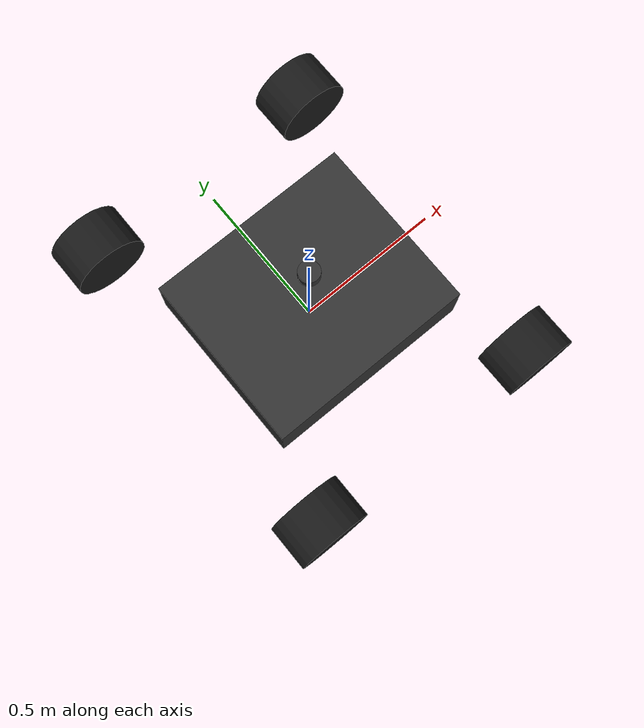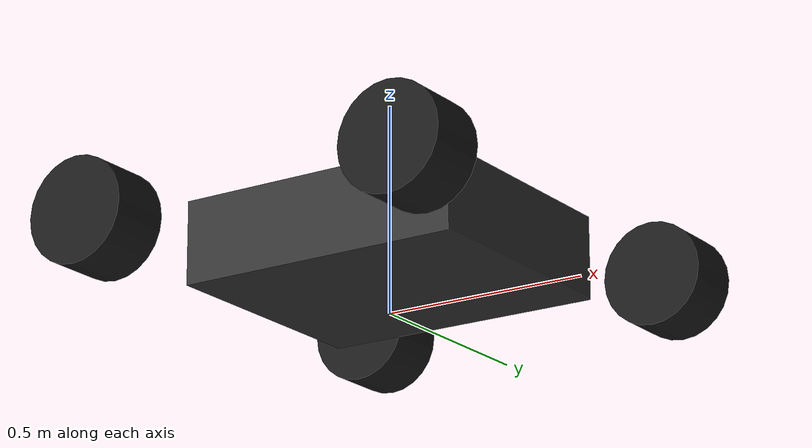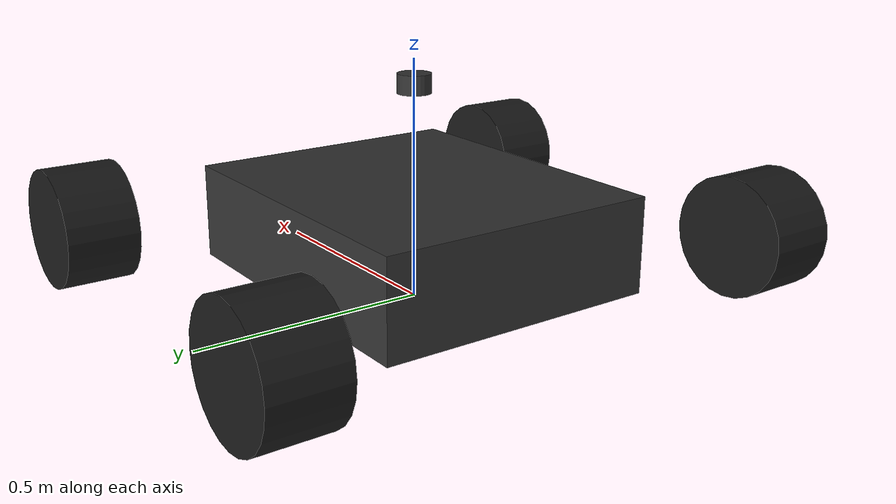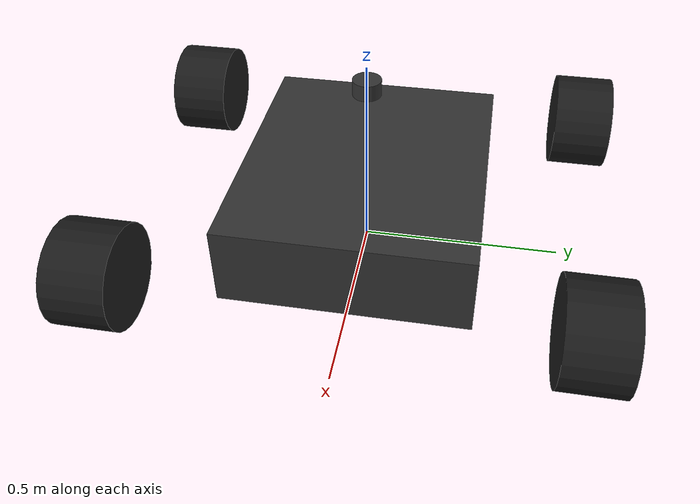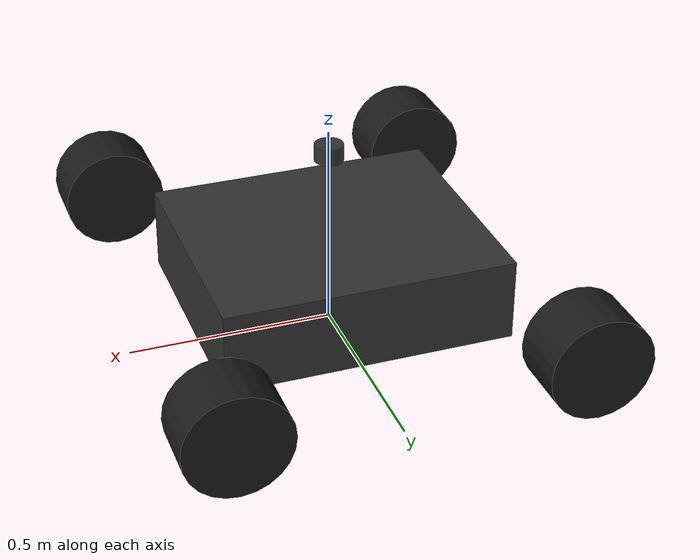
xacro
<?xml version="1.0" encoding="utf-8"?>
<robot xmlns:xacro="http://www.ros.org/wiki/xacro"
       name="earendil_vehicle">

  <!-- Earendil Vehicle — ARC 2026 Rover Description
       Skid-steer, BLDC hub motors, RPi5 + H723 + F411x4.
       TF tree: map → odom → base_link → sensors + wheels
  -->

  <xacro:arg name="wheel_base" default="0.825"/>
  <xacro:arg name="track_width" default="1.10"/>
  <xacro:arg name="wheel_radius" default="0.125"/>

  <xacro:property name="wb" value="$(arg wheel_base)"/>
  <xacro:property name="tw" value="$(arg track_width)"/>
  <xacro:property name="wr" value="$(arg wheel_radius)"/>
  <xacro:property name="half_wb" value="${wb / 2.0}"/>
  <xacro:property name="half_tw" value="${tw / 2.0}"/>

  <!-- ====== Base Link ====== -->
  <link name="base_footprint"/>

  <link name="base_link">
    <inertial>
      <mass value="30.0"/>
      <origin xyz="0 0 0"/>
      <inertia
        ixx="1.20" ixy="0.0" ixz="0.0"
        iyy="1.50" iyz="0.0"
        izz="2.00"/>
    </inertial>
    <visual>
      <geometry>
        <box size="0.70 0.60 0.20"/>
      </geometry>
      <material name="dark_grey">
        <color rgba="0.2 0.2 0.2 1.0"/>
      </material>
    </visual>
    <collision>
      <geometry>
        <box size="0.70 0.60 0.20"/>
      </geometry>
    </collision>
  </link>

  <joint name="base_joint" type="fixed">
    <origin xyz="0 0 0.15"/>
    <parent link="base_footprint"/>
    <child link="base_link"/>
  </joint>

  <!-- ====== Wheels (simplified) ====== -->
  <xacro:macro name="wheel_link" params="name x y">
    <link name="wheel_${name}_link">
      <inertial>
        <mass value="2.55"/>
        <origin xyz="0 0 0"/>
        <inertia
          ixx="0.014" ixy="0.0" ixz="0.0"
          iyy="0.017" iyz="0.0"
          izz="0.014"/>
      </inertial>
      <visual>
        <origin xyz="0 0 0" rpy="${pi/2} 0 0"/>
        <geometry>
          <cylinder radius="${wr}" length="0.15"/>
        </geometry>
        <material name="black">
          <color rgba="0.1 0.1 0.1 1.0"/>
        </material>
      </visual>
      <collision>
        <origin xyz="0 0 0" rpy="${pi/2} 0 0"/>
        <geometry>
          <cylinder radius="${wr}" length="0.15"/>
        </geometry>
      </collision>
    </link>

    <joint name="wheel_${name}_joint" type="continuous">
      <origin xyz="${x} ${y} 0"/>
      <parent link="base_link"/>
      <child link="wheel_${name}_link"/>
      <axis xyz="0 1 0"/>
    </joint>
  </xacro:macro>

  <xacro:wheel_link name="FL" x="${half_wb}" y="${half_tw}"/>
  <xacro:wheel_link name="RL" x="${-half_wb}" y="${half_tw}"/>
  <xacro:wheel_link name="FR" x="${half_wb}" y="${-half_tw}"/>
  <xacro:wheel_link name="RR" x="${-half_wb}" y="${-half_tw}"/>

  <!-- ====== LiDAR ====== -->
  <link name="lidar_link">
    <inertial>
      <mass value="0.17"/>
      <origin xyz="0 0 0"/>
      <inertia ixx="0.001" ixy="0" ixz="0"
               iyy="0.001" iyz="0"
               izz="0.001"/>
    </inertial>
    <visual>
      <geometry>
        <cylinder radius="0.035" length="0.04"/>
      </geometry>
      <material name="dark_grey">
        <color rgba="0.2 0.2 0.2 1.0"/>
      </material>
    </visual>
  </link>

  <joint name="lidar_joint" type="fixed">
    <origin xyz="0.0 0.0 0.30"/>
    <parent link="base_link"/>
    <child link="lidar_link"/>
  </joint>

  <!-- ====== IMU ====== -->
  <link name="imu_link"/>

  <joint name="imu_joint" type="fixed">
    <origin xyz="0.0 0.0 0.0"/>
    <parent link="base_link"/>
    <child link="imu_link"/>
  </joint>

  <!-- ====== GPS ====== -->
  <link name="gps_link"/>

  <joint name="gps_joint" type="fixed">
    <origin xyz="0.0 0.0 0.15"/>
    <parent link="base_link"/>
    <child link="gps_link"/>
  </joint>

  <!-- ====== Camera (optional) ====== -->
  <link name="camera_frame"/>
  <link name="camera_optical_frame"/>

  <joint name="camera_joint" type="fixed">
    <origin xyz="0.30 0.0 0.10"/>
    <parent link="base_link"/>
    <child link="camera_frame"/>
  </joint>

  <joint name="camera_optical_joint" type="fixed">
    <origin xyz="0 0 0" rpy="${-pi/2} 0 ${-pi/2}"/>
    <parent link="camera_frame"/>
    <child link="camera_optical_frame"/>
  </joint>

</robot>
